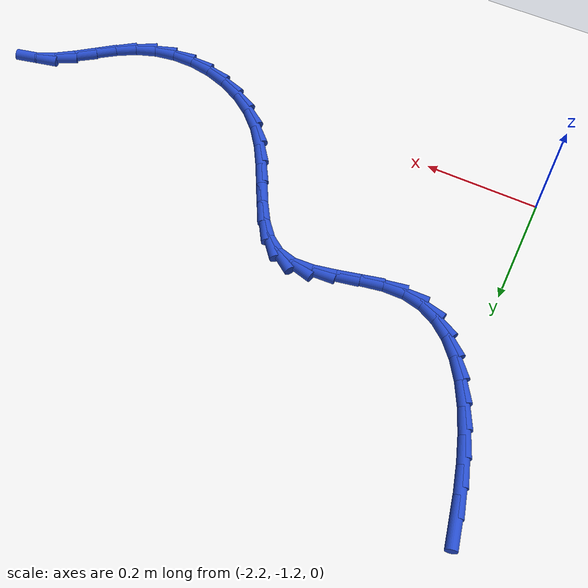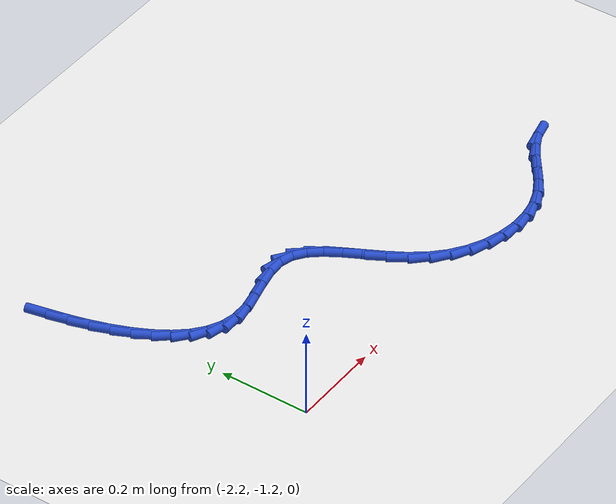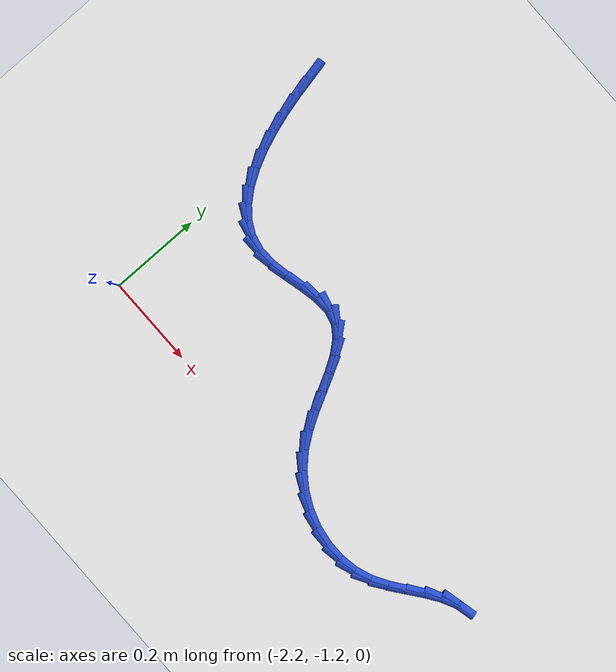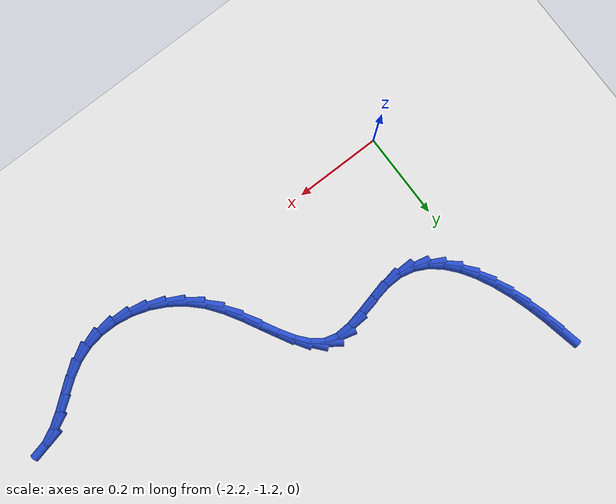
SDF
<sdf version="1.6">
 <world name="default">
  <model name="ground_plane">
   <static>1</static>
   <link name="link">
    <collision name="collision">
     <geometry><plane><normal>0 0 1</normal><size>100 100</size></plane></geometry>
     <surface><friction><ode><mu>100</mu><mu2>50</mu2></ode></friction></surface>
    </collision>
    <visual name="visual">
     <cast_shadows>0</cast_shadows>
     <geometry><plane><normal>0 0 1</normal><size>100 100</size></plane></geometry>
     <material>
      <script><uri>file://media/materials/scripts/gazebo.material</uri><name>Gazebo/WhiteGlow</name></script>
     </material>
    </visual>
   </link>
  </model>
  <model name="line">
   <link name="link_129">
    <pose>-2.2655904823986566 -0.61429176679505 0.01 0 1.57 -1.3633364813611888</pose>
    <collision name="collision">
     <geometry><cylinder><radius>0.01</radius><length>0.08</length></cylinder></geometry>
    </collision>
    <visual name="visual">
     <material>
      <script><name>Gazebo/Blue</name><uri>file://media/materials/scripts/gazebo.material</uri></script>
     </material>
     <geometry><cylinder><radius>0.01</radius><length>0.08</length></cylinder></geometry>
    </visual>
   </link>
   <link name="link_130">
    <pose>-2.256035138316165 -0.6596878437049002 0.01 0 1.57 -1.3187289738663908</pose>
    <collision name="collision">
     <geometry><cylinder><radius>0.01</radius><length>0.08</length></cylinder></geometry>
    </collision>
    <visual name="visual">
     <material>
      <script><name>Gazebo/Blue</name><uri>file://media/materials/scripts/gazebo.material</uri></script>
     </material>
     <geometry><cylinder><radius>0.01</radius><length>0.08</length></cylinder></geometry>
    </visual>
   </link>
   <link name="link_131">
    <pose>-2.244508045528149 -0.7044453907758378 0.01 0 1.57 -1.2646938393758513</pose>
    <collision name="collision">
     <geometry><cylinder><radius>0.01</radius><length>0.08</length></cylinder></geometry>
    </collision>
    <visual name="visual">
     <material>
      <script><name>Gazebo/Blue</name><uri>file://media/materials/scripts/gazebo.material</uri></script>
     </material>
     <geometry><cylinder><radius>0.01</radius><length>0.08</length></cylinder></geometry>
    </visual>
   </link>
   <link name="link_132">
    <pose>-2.2308468055829236 -0.7476723193238172 0.01 0 1.57 -1.1980016749590587</pose>
    <collision name="collision">
     <geometry><cylinder><radius>0.01</radius><length>0.08</length></cylinder></geometry>
    </collision>
    <visual name="visual">
     <material>
      <script><name>Gazebo/Blue</name><uri>file://media/materials/scripts/gazebo.material</uri></script>
     </material>
     <geometry><cylinder><radius>0.01</radius><length>0.08</length></cylinder></geometry>
    </visual>
   </link>
   <link name="link_133">
    <pose>-2.2148890200288065 -0.7884765406647967 0.01 0 1.57 -1.11417212758503</pose>
    <collision name="collision">
     <geometry><cylinder><radius>0.01</radius><length>0.08</length></cylinder></geometry>
    </collision>
    <visual name="visual">
     <material>
      <script><name>Gazebo/Blue</name><uri>file://media/materials/scripts/gazebo.material</uri></script>
     </material>
     <geometry><cylinder><radius>0.01</radius><length>0.08</length></cylinder></geometry>
    </visual>
   </link>
   <link name="link_134">
    <pose>-2.1964722904141127 -0.8259659661147324 0.01 0 1.57 -1.007103855493387</pose>
    <collision name="collision">
     <geometry><cylinder><radius>0.01</radius><length>0.08</length></cylinder></geometry>
    </collision>
    <visual name="visual">
     <material>
      <script><name>Gazebo/Blue</name><uri>file://media/materials/scripts/gazebo.material</uri></script>
     </material>
     <geometry><cylinder><radius>0.01</radius><length>0.08</length></cylinder></geometry>
    </visual>
   </link>
   <link name="link_135">
    <pose>-2.1754342182871595 -0.8592485069895826 0.01 0 1.57 -0.8690735447112782</pose>
    <collision name="collision">
     <geometry><cylinder><radius>0.01</radius><length>0.08</length></cylinder></geometry>
    </collision>
    <visual name="visual">
     <material>
      <script><name>Gazebo/Blue</name><uri>file://media/materials/scripts/gazebo.material</uri></script>
     </material>
     <geometry><cylinder><radius>0.01</radius><length>0.08</length></cylinder></geometry>
    </visual>
   </link>
   <link name="link_136">
    <pose>-2.151612405196263 -0.8874320746053019 0.01 0 1.57 -0.692216913628528</pose>
    <collision name="collision">
     <geometry><cylinder><radius>0.01</radius><length>0.08</length></cylinder></geometry>
    </collision>
    <visual name="visual">
     <material>
      <script><name>Gazebo/Blue</name><uri>file://media/materials/scripts/gazebo.material</uri></script>
     </material>
     <geometry><cylinder><radius>0.01</radius><length>0.08</length></cylinder></geometry>
    </visual>
   </link>
   <link name="link_137">
    <pose>-2.124844452689738 -0.9096245802778483 0.01 0 1.57 -0.4735353312601069</pose>
    <collision name="collision">
     <geometry><cylinder><radius>0.01</radius><length>0.08</length></cylinder></geometry>
    </collision>
    <visual name="visual">
     <material>
      <script><name>Gazebo/Blue</name><uri>file://media/materials/scripts/gazebo.material</uri></script>
     </material>
     <geometry><cylinder><radius>0.01</radius><length>0.08</length></cylinder></geometry>
    </visual>
   </link>
   <link name="link_138">
    <pose>-2.0949679623159025 -0.9249339353231782 0.01 0 1.57 -0.22349409030630307</pose>
    <collision name="collision">
     <geometry><cylinder><radius>0.01</radius><length>0.08</length></cylinder></geometry>
    </collision>
    <visual name="visual">
     <material>
      <script><name>Gazebo/Blue</name><uri>file://media/materials/scripts/gazebo.material</uri></script>
     </material>
     <geometry><cylinder><radius>0.01</radius><length>0.08</length></cylinder></geometry>
    </visual>
   </link>
   <link name="link_139">
    <pose>-2.0618205356230717 -0.9324680510572492 0.01 0 1.57 0.0263491603298243</pose>
    <collision name="collision">
     <geometry><cylinder><radius>0.01</radius><length>0.08</length></cylinder></geometry>
    </collision>
    <visual name="visual">
     <material>
      <script><name>Gazebo/Blue</name><uri>file://media/materials/scripts/gazebo.material</uri></script>
     </material>
     <geometry><cylinder><radius>0.01</radius><length>0.08</length></cylinder></geometry>
    </visual>
   </link>
   <link name="link_140">
    <pose>-2.0253069252684854 -0.9315057253662211 0.01 0 1.57 0.1898237467385851</pose>
    <collision name="collision">
     <geometry><cylinder><radius>0.01</radius><length>0.08</length></cylinder></geometry>
    </collision>
    <visual name="visual">
     <material>
      <script><name>Gazebo/Blue</name><uri>file://media/materials/scripts/gazebo.material</uri></script>
     </material>
     <geometry><cylinder><radius>0.01</radius><length>0.08</length></cylinder></geometry>
    </visual>
   </link>
   <link name="link_141">
    <pose>-1.986394201442657 -0.9240291485692701 0.01 0 1.57 0.24440435641521902</pose>
    <collision name="collision">
     <geometry><cylinder><radius>0.01</radius><length>0.08</length></cylinder></geometry>
    </collision>
    <visual name="visual">
     <material>
      <script><name>Gazebo/Blue</name><uri>file://media/materials/scripts/gazebo.material</uri></script>
     </material>
     <geometry><cylinder><radius>0.01</radius><length>0.08</length></cylinder></geometry>
    </visual>
   </link>
   <link name="link_142">
    <pose>-1.9468976728567897 -0.9141791137821782 0.01 0 1.57 0.206787216550225</pose>
    <collision name="collision">
     <geometry><cylinder><radius>0.01</radius><length>0.08</length></cylinder></geometry>
    </collision>
    <visual name="visual">
     <material>
      <script><name>Gazebo/Blue</name><uri>file://media/materials/scripts/gazebo.material</uri></script>
     </material>
     <geometry><cylinder><radius>0.01</radius><length>0.08</length></cylinder></geometry>
    </visual>
   </link>
   <link name="link_143">
    <pose>-1.9086563026231262 -0.9061566099913437 0.01 0 1.57 0.0566715390961857</pose>
    <collision name="collision">
     <geometry><cylinder><radius>0.01</radius><length>0.08</length></cylinder></geometry>
    </collision>
    <visual name="visual">
     <material>
      <script><name>Gazebo/Blue</name><uri>file://media/materials/scripts/gazebo.material</uri></script>
     </material>
     <geometry><cylinder><radius>0.01</radius><length>0.08</length></cylinder></geometry>
    </visual>
   </link>
   <link name="link_144">
    <pose>-1.873509053853913 -0.9041626261831656 0.01 0 1.57 -0.25688549209185535</pose>
    <collision name="collision">
     <geometry><cylinder><radius>0.01</radius><length>0.08</length></cylinder></geometry>
    </collision>
    <visual name="visual">
     <material>
      <script><name>Gazebo/Blue</name><uri>file://media/materials/scripts/gazebo.material</uri></script>
     </material>
     <geometry><cylinder><radius>0.01</radius><length>0.08</length></cylinder></geometry>
    </visual>
   </link>
   <link name="link_145">
    <pose>-1.8431633404350247 -0.9121341227665338 0.01 0 1.57 -0.6212561823836262</pose>
    <collision name="collision">
     <geometry><cylinder><radius>0.01</radius><length>0.08</length></cylinder></geometry>
    </collision>
    <visual name="visual">
     <material>
      <script><name>Gazebo/Blue</name><uri>file://media/materials/scripts/gazebo.material</uri></script>
     </material>
     <geometry><cylinder><radius>0.01</radius><length>0.08</length></cylinder></geometry>
    </visual>
   </link>
   <link name="link_146">
    <pose>-1.8175595443447072 -0.9304615024558404 0.01 0 1.57 -0.874461189951797</pose>
    <collision name="collision">
     <geometry><cylinder><radius>0.01</radius><length>0.08</length></cylinder></geometry>
    </collision>
    <visual name="visual">
     <material>
      <script><name>Gazebo/Blue</name><uri>file://media/materials/scripts/gazebo.material</uri></script>
     </material>
     <geometry><cylinder><radius>0.01</radius><length>0.08</length></cylinder></geometry>
    </visual>
   </link>
   <link name="link_147">
    <pose>-1.795373919818001 -0.9569979744065279 0.01 0 1.57 -1.0171001791016148</pose>
    <collision name="collision">
     <geometry><cylinder><radius>0.01</radius><length>0.08</length></cylinder></geometry>
    </collision>
    <visual name="visual">
     <material>
      <script><name>Gazebo/Blue</name><uri>file://media/materials/scripts/gazebo.material</uri></script>
     </material>
     <geometry><cylinder><radius>0.01</radius><length>0.08</length></cylinder></geometry>
    </visual>
   </link>
   <link name="link_148">
    <pose>-1.7752553027933577 -0.9895417173185588 0.01 0 1.57 -1.0804848573532146</pose>
    <collision name="collision">
     <geometry><cylinder><radius>0.01</radius><length>0.08</length></cylinder></geometry>
    </collision>
    <visual name="visual">
     <material>
      <script><name>Gazebo/Blue</name><uri>file://media/materials/scripts/gazebo.material</uri></script>
     </material>
     <geometry><cylinder><radius>0.01</radius><length>0.08</length></cylinder></geometry>
    </visual>
   </link>
   <link name="link_149">
    <pose>-1.7558525292092346 -1.0258909098918934 0.01 0 1.57 -1.085020948013075</pose>
    <collision name="collision">
     <geometry><cylinder><radius>0.01</radius><length>0.08</length></cylinder></geometry>
    </collision>
    <visual name="visual">
     <material>
      <script><name>Gazebo/Blue</name><uri>file://media/materials/scripts/gazebo.material</uri></script>
     </material>
     <geometry><cylinder><radius>0.01</radius><length>0.08</length></cylinder></geometry>
    </visual>
   </link>
   <link name="link_150">
    <pose>-1.735814435004083 -1.0638437308264934 0.01 0 1.57 -1.0380532172669468</pose>
    <collision name="collision">
     <geometry><cylinder><radius>0.01</radius><length>0.08</length></cylinder></geometry>
    </collision>
    <visual name="visual">
     <material>
      <script><name>Gazebo/Blue</name><uri>file://media/materials/scripts/gazebo.material</uri></script>
     </material>
     <geometry><cylinder><radius>0.01</radius><length>0.08</length></cylinder></geometry>
    </visual>
   </link>
   <link name="link_151">
    <pose>-1.7137898561163583 -1.1011983588223206 0.01 0 1.57 -0.9376302566451955</pose>
    <collision name="collision">
     <geometry><cylinder><radius>0.01</radius><length>0.08</length></cylinder></geometry>
    </collision>
    <visual name="visual">
     <material>
      <script><name>Gazebo/Blue</name><uri>file://media/materials/scripts/gazebo.material</uri></script>
     </material>
     <geometry><cylinder><radius>0.01</radius><length>0.08</length></cylinder></geometry>
    </visual>
   </link>
   <link name="link_152">
    <pose>-1.688427628484513 -1.1357529725793378 0.01 0 1.57 -0.7849235462744119</pose>
    <collision name="collision">
     <geometry><cylinder><radius>0.01</radius><length>0.08</length></cylinder></geometry>
    </collision>
    <visual name="visual">
     <material>
      <script><name>Gazebo/Blue</name><uri>file://media/materials/scripts/gazebo.material</uri></script>
     </material>
     <geometry><cylinder><radius>0.01</radius><length>0.08</length></cylinder></geometry>
    </visual>
   </link>
   <link name="link_153">
    <pose>-1.6586327011257564 -1.1655196309874916 0.01 0 1.57 -0.6233199348783021</pose>
    <collision name="collision">
     <geometry><cylinder><radius>0.01</radius><length>0.08</length></cylinder></geometry>
    </collision>
    <visual name="visual">
     <material>
      <script><name>Gazebo/Blue</name><uri>file://media/materials/scripts/gazebo.material</uri></script>
     </material>
     <geometry><cylinder><radius>0.01</radius><length>0.08</length></cylinder></geometry>
    </visual>
   </link>
   <link name="link_154">
    <pose>-1.624856884348281 -1.1898021777546302 0.01 0 1.57 -0.46845621091779227</pose>
    <collision name="collision">
     <geometry><cylinder><radius>0.01</radius><length>0.08</length></cylinder></geometry>
    </collision>
    <visual name="visual">
     <material>
      <script><name>Gazebo/Blue</name><uri>file://media/materials/scripts/gazebo.material</uri></script>
     </material>
     <geometry><cylinder><radius>0.01</radius><length>0.08</length></cylinder></geometry>
    </visual>
   </link>
   <link name="link_155">
    <pose>-1.5881298176966985 -1.2083870021402259 0.01 0 1.57 -0.3168934728141592</pose>
    <collision name="collision">
     <geometry><cylinder><radius>0.01</radius><length>0.08</length></cylinder></geometry>
    </collision>
    <visual name="visual">
     <material>
      <script><name>Gazebo/Blue</name><uri>file://media/materials/scripts/gazebo.material</uri></script>
     </material>
     <geometry><cylinder><radius>0.01</radius><length>0.08</length></cylinder></geometry>
    </visual>
   </link>
   <link name="link_156">
    <pose>-1.5494821372758454 -1.221061325631809 0.01 0 1.57 -0.16419947584012554</pose>
    <collision name="collision">
     <geometry><cylinder><radius>0.01</radius><length>0.08</length></cylinder></geometry>
    </collision>
    <visual name="visual">
     <material>
      <script><name>Gazebo/Blue</name><uri>file://media/materials/scripts/gazebo.material</uri></script>
     </material>
     <geometry><cylinder><radius>0.01</radius><length>0.08</length></cylinder></geometry>
    </visual>
   </link>
   <link name="link_157">
    <pose>-1.5099444791905594 -1.2276123697169077 0.01 0 1.57 -0.00545686306501224</pose>
    <collision name="collision">
     <geometry><cylinder><radius>0.01</radius><length>0.08</length></cylinder></geometry>
    </collision>
    <visual name="visual">
     <material>
      <script><name>Gazebo/Blue</name><uri>file://media/materials/scripts/gazebo.material</uri></script>
     </material>
     <geometry><cylinder><radius>0.01</radius><length>0.08</length></cylinder></geometry>
    </visual>
   </link>
   <link name="link_158">
    <pose>-1.4705474795456766 -1.2278273558830528 0.01 0 1.57 0.16420419417660428</pose>
    <collision name="collision">
     <geometry><cylinder><radius>0.01</radius><length>0.08</length></cylinder></geometry>
    </collision>
    <visual name="visual">
     <material>
      <script><name>Gazebo/Blue</name><uri>file://media/materials/scripts/gazebo.material</uri></script>
     </material>
     <geometry><cylinder><radius>0.01</radius><length>0.08</length></cylinder></geometry>
    </visual>
   </link>
   <link name="link_159">
    <pose>-1.4323217744460333 -1.2214935056177736 0.01 0 1.57 0.3486280976089151</pose>
    <collision name="collision">
     <geometry><cylinder><radius>0.01</radius><length>0.08</length></cylinder></geometry>
    </collision>
    <visual name="visual">
     <material>
      <script><name>Gazebo/Blue</name><uri>file://media/materials/scripts/gazebo.material</uri></script>
     </material>
     <geometry><cylinder><radius>0.01</radius><length>0.08</length></cylinder></geometry>
    </visual>
   </link>
   <link name="link_160">
    <pose>-1.3962970449860315 -1.208399432589181 0.01 0 1.57 0.524966659731425</pose>
    <collision name="collision">
     <geometry><cylinder><radius>0.01</radius><length>0.08</length></cylinder></geometry>
    </collision>
    <visual name="visual">
     <material>
      <script><name>Gazebo/Blue</name><uri>file://media/materials/scripts/gazebo.material</uri></script>
     </material>
     <geometry><cylinder><radius>0.01</radius><length>0.08</length></cylinder></geometry>
    </visual>
   </link>
   <link name="link_161">
    <pose>-1.3629766157679566 -1.1891010544254255 0.01 0 1.57 0.6286058469523133</pose>
    <collision name="collision">
     <geometry><cylinder><radius>0.01</radius><length>0.08</length></cylinder></geometry>
    </collision>
    <visual name="visual">
     <material>
      <script><name>Gazebo/Blue</name><uri>file://media/materials/scripts/gazebo.material</uri></script>
     </material>
     <geometry><cylinder><radius>0.01</radius><length>0.08</length></cylinder></geometry>
    </visual>
   </link>
   <link name="link_162">
    <pose>-1.3314653374158658 -1.1661929348767568 0.01 0 1.57 0.6531523077087538</pose>
    <collision name="collision">
     <geometry><cylinder><radius>0.01</radius><length>0.08</length></cylinder></geometry>
    </collision>
    <visual name="visual">
     <material>
      <script><name>Gazebo/Blue</name><uri>file://media/materials/scripts/gazebo.material</uri></script>
     </material>
     <geometry><cylinder><radius>0.01</radius><length>0.08</length></cylinder></geometry>
    </visual>
   </link>
   <link name="link_163">
    <pose>-1.300638387047156 -1.1426044476441293 0.01 0 1.57 0.5988721857069703</pose>
    <collision name="collision">
     <geometry><cylinder><radius>0.01</radius><length>0.08</length></cylinder></geometry>
    </collision>
    <visual name="visual">
     <material>
      <script><name>Gazebo/Blue</name><uri>file://media/materials/scripts/gazebo.material</uri></script>
     </material>
     <geometry><cylinder><radius>0.01</radius><length>0.08</length></cylinder></geometry>
    </visual>
   </link>
   <link name="link_164">
    <pose>-1.2693709417792216 -1.1212649664284946 0.01 0 1.57 0.4574081556118295</pose>
    <collision name="collision">
     <geometry><cylinder><radius>0.01</radius><length>0.08</length></cylinder></geometry>
    </collision>
    <visual name="visual">
     <material>
      <script><name>Gazebo/Blue</name><uri>file://media/materials/scripts/gazebo.material</uri></script>
     </material>
     <geometry><cylinder><radius>0.01</radius><length>0.08</length></cylinder></geometry>
    </visual>
   </link>
   <link name="link_165">
    <pose>-1.2365381787294576 -1.1051038649308063 0.01 0 1.57 0.22689474899597512</pose>
    <collision name="collision">
     <geometry><cylinder><radius>0.01</radius><length>0.08</length></cylinder></geometry>
    </collision>
    <visual name="visual">
     <material>
      <script><name>Gazebo/Blue</name><uri>file://media/materials/scripts/gazebo.material</uri></script>
     </material>
     <geometry><cylinder><radius>0.01</radius><length>0.08</length></cylinder></geometry>
    </visual>
   </link>
  </model>
 </world>
</sdf>
